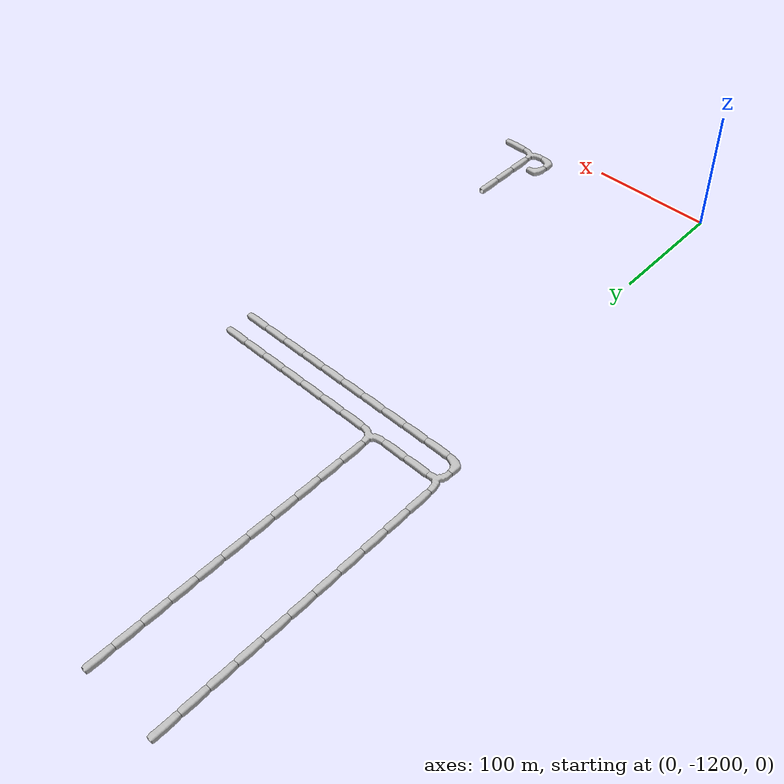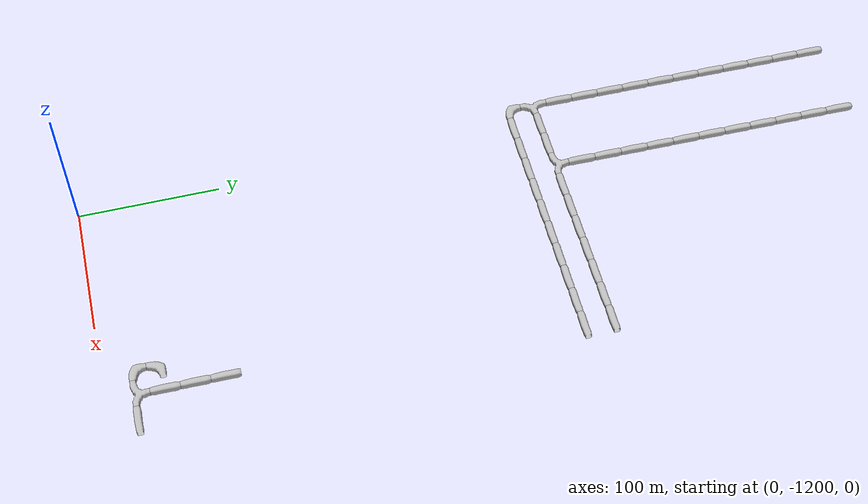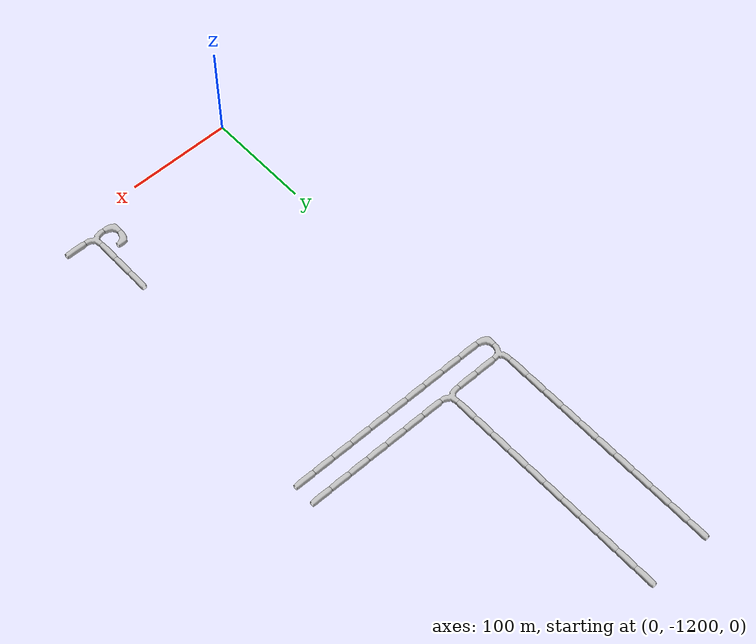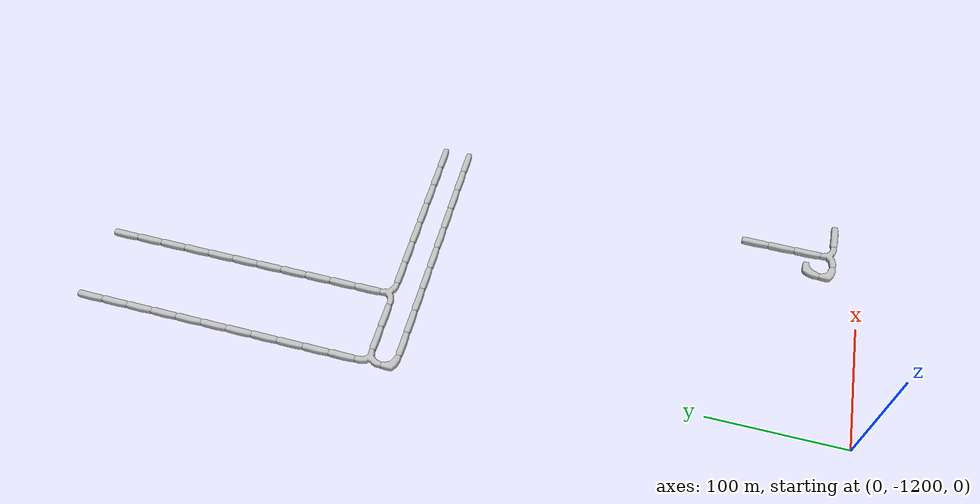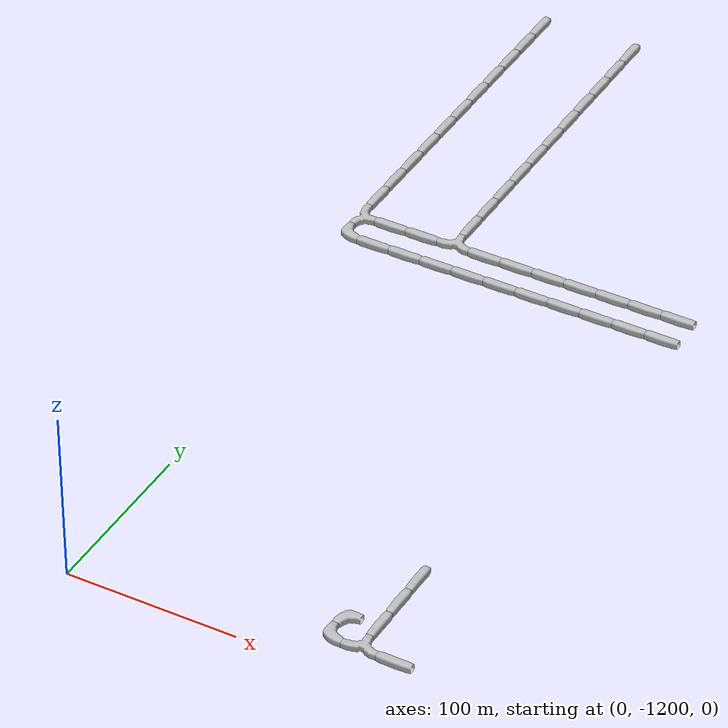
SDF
<sdf version="1.6">
 <world name="cave_8000_4">
  <include>
   <static>true</static>
   <name>cave_2_-32</name>
   <pose>40 -640 0 0 0 0.0</pose>
   <uri>model://cave_straight_20m</uri>
  </include>
  <include>
   <static>true</static>
   <name>cave_2_-33</name>
   <pose>40 -660 0 0 0 0.0</pose>
   <uri>model://cave_straight_20m</uri>
  </include>
  <include>
   <static>true</static>
   <name>cave_2_-34</name>
   <pose>40 -680 0 0 0 0.0</pose>
   <uri>model://cave_straight_20m</uri>
  </include>
  <include>
   <static>true</static>
   <name>cave_2_-35</name>
   <pose>40 -700 0 0 0 0.0</pose>
   <uri>model://cave_straight_20m</uri>
  </include>
  <include>
   <static>true</static>
   <name>cave_2_-36</name>
   <pose>40 -720 0 0 0 0.0</pose>
   <uri>model://cave_straight_20m</uri>
  </include>
  <include>
   <static>true</static>
   <name>cave_2_-37</name>
   <pose>40 -740 0 0 0 0.0</pose>
   <uri>model://cave_straight_20m</uri>
  </include>
  <include>
   <static>true</static>
   <name>cave_2_-38</name>
   <pose>40 -760 0 0 0 0.0</pose>
   <uri>model://cave_straight_20m</uri>
  </include>
  <include>
   <static>true</static>
   <name>cave_2_-39</name>
   <pose>40 -780 0 0 0 0.0</pose>
   <uri>model://cave_straight_20m</uri>
  </include>
  <include>
   <static>true</static>
   <name>cave_2_-40</name>
   <pose>40 -800 0 0 0 0.0</pose>
   <uri>model://cave_straight_20m</uri>
  </include>
  <include>
   <static>true</static>
   <name>cave_2_-41</name>
   <pose>40 -820 0 0 0 0.0</pose>
   <uri>model://cave_straight_20m</uri>
  </include>
  <include>
   <static>true</static>
   <name>cave_2_-42</name>
   <pose>40 -840 0 0 0 0.0</pose>
   <uri>model://cave_straight_20m</uri>
  </include>
  <include>
   <static>true</static>
   <name>cave_2_-43</name>
   <pose>40 -860 0 0 0 0.0</pose>
   <uri>model://cave_3way_20m</uri>
  </include>
  <include>
   <static>true</static>
   <name>cave_3_-43</name>
   <pose>60 -860 0 0 0 1.5707963267948966</pose>
   <uri>model://cave_straight_20m</uri>
  </include>
  <include>
   <static>true</static>
   <name>cave_4_-43</name>
   <pose>80 -860 0 0 0 1.5707963267948966</pose>
   <uri>model://cave_straight_20m</uri>
  </include>
  <include>
   <static>true</static>
   <name>cave_5_-43</name>
   <pose>100 -860 0 0 0 1.5707963267948966</pose>
   <uri>model://cave_straight_20m</uri>
  </include>
  <include>
   <static>true</static>
   <name>cave_6_-43</name>
   <pose>120 -860 0 0 0 1.5707963267948966</pose>
   <uri>model://cave_straight_20m</uri>
  </include>
  <include>
   <static>true</static>
   <name>cave_7_-43</name>
   <pose>140 -860 0 0 0 1.5707963267948966</pose>
   <uri>model://cave_straight_20m</uri>
  </include>
  <include>
   <static>true</static>
   <name>cave_8_-43</name>
   <pose>160 -860 0 0 0 1.5707963267948966</pose>
   <uri>model://cave_straight_20m</uri>
  </include>
  <include>
   <static>true</static>
   <name>cave_9_-43</name>
   <pose>180 -860 0 0 0 1.5707963267948966</pose>
   <uri>model://cave_straight_20m</uri>
  </include>
  <include>
   <static>true</static>
   <name>cave_9_-59</name>
   <pose>180 -1180 0 0 0 1.5707963267948966</pose>
   <uri>model://cave_straight_20m</uri>
  </include>
  <include>
   <static>true</static>
   <name>cave_8_-59</name>
   <pose>160 -1180 0 0 0 0.0</pose>
   <uri>model://cave_3way_20m</uri>
  </include>
  <include>
   <static>true</static>
   <name>cave_7_-59</name>
   <pose>140 -1180 0 0 0 0.0</pose>
   <uri>model://cave_L_20m</uri>
  </include>
  <include>
   <static>true</static>
   <name>cave_7_-58</name>
   <pose>140 -1160 0 0 0 -1.5707963267948966</pose>
   <uri>model://cave_L_20m</uri>
  </include>
  <include>
   <static>true</static>
   <name>cave_8_-58</name>
   <pose>160 -1160 0 0 0 0.0</pose>
   <uri>model://cave_straight_20m</uri>
  </include>
  <include>
   <static>true</static>
   <name>cave_8_-57</name>
   <pose>160 -1140 0 0 0 0.0</pose>
   <uri>model://cave_straight_20m</uri>
  </include>
  <include>
   <static>true</static>
   <name>cave_8_-56</name>
   <pose>160 -1120 0 0 0 0.0</pose>
   <uri>model://cave_straight_20m</uri>
  </include>
  <include>
   <static>true</static>
   <name>cave_1_-43</name>
   <pose>20 -860 0 0 0 1.5707963267948966</pose>
   <uri>model://cave_straight_20m</uri>
  </include>
  <include>
   <static>true</static>
   <name>cave_0_-43</name>
   <pose>0 -860 0 0 0 1.5707963267948966</pose>
   <uri>model://cave_straight_20m</uri>
  </include>
  <include>
   <static>true</static>
   <name>cave_-1_-43</name>
   <pose>-20 -860 0 0 0 -1.5707963267948966</pose>
   <uri>model://cave_3way_20m</uri>
  </include>
  <include>
   <static>true</static>
   <name>cave_-1_-44</name>
   <pose>-20 -880 0 0 0 0.0</pose>
   <uri>model://cave_L_20m</uri>
  </include>
  <include>
   <static>true</static>
   <name>cave_0_-44</name>
   <pose>0 -880 0 0 0 1.5707963267948966</pose>
   <uri>model://cave_straight_20m</uri>
  </include>
  <include>
   <static>true</static>
   <name>cave_1_-44</name>
   <pose>20 -880 0 0 0 1.5707963267948966</pose>
   <uri>model://cave_straight_20m</uri>
  </include>
  <include>
   <static>true</static>
   <name>cave_2_-44</name>
   <pose>40 -880 0 0 0 1.5707963267948966</pose>
   <uri>model://cave_straight_20m</uri>
  </include>
  <include>
   <static>true</static>
   <name>cave_3_-44</name>
   <pose>60 -880 0 0 0 1.5707963267948966</pose>
   <uri>model://cave_straight_20m</uri>
  </include>
  <include>
   <static>true</static>
   <name>cave_4_-44</name>
   <pose>80 -880 0 0 0 1.5707963267948966</pose>
   <uri>model://cave_straight_20m</uri>
  </include>
  <include>
   <static>true</static>
   <name>cave_5_-44</name>
   <pose>100 -880 0 0 0 1.5707963267948966</pose>
   <uri>model://cave_straight_20m</uri>
  </include>
  <include>
   <static>true</static>
   <name>cave_6_-44</name>
   <pose>120 -880 0 0 0 1.5707963267948966</pose>
   <uri>model://cave_straight_20m</uri>
  </include>
  <include>
   <static>true</static>
   <name>cave_7_-44</name>
   <pose>140 -880 0 0 0 1.5707963267948966</pose>
   <uri>model://cave_straight_20m</uri>
  </include>
  <include>
   <static>true</static>
   <name>cave_8_-44</name>
   <pose>160 -880 0 0 0 1.5707963267948966</pose>
   <uri>model://cave_straight_20m</uri>
  </include>
  <include>
   <static>true</static>
   <name>cave_9_-44</name>
   <pose>180 -880 0 0 0 1.5707963267948966</pose>
   <uri>model://cave_straight_20m</uri>
  </include>
  <include>
   <static>true</static>
   <name>cave_-1_-42</name>
   <pose>-20 -840 0 0 0 0.0</pose>
   <uri>model://cave_straight_20m</uri>
  </include>
  <include>
   <static>true</static>
   <name>cave_-1_-41</name>
   <pose>-20 -820 0 0 0 0.0</pose>
   <uri>model://cave_straight_20m</uri>
  </include>
  <include>
   <static>true</static>
   <name>cave_-1_-40</name>
   <pose>-20 -800 0 0 0 0.0</pose>
   <uri>model://cave_straight_20m</uri>
  </include>
  <include>
   <static>true</static>
   <name>cave_-1_-39</name>
   <pose>-20 -780 0 0 0 0.0</pose>
   <uri>model://cave_straight_20m</uri>
  </include>
  <include>
   <static>true</static>
   <name>cave_-1_-38</name>
   <pose>-20 -760 0 0 0 0.0</pose>
   <uri>model://cave_straight_20m</uri>
  </include>
  <include>
   <static>true</static>
   <name>cave_-1_-37</name>
   <pose>-20 -740 0 0 0 0.0</pose>
   <uri>model://cave_straight_20m</uri>
  </include>
  <include>
   <static>true</static>
   <name>cave_-1_-36</name>
   <pose>-20 -720 0 0 0 0.0</pose>
   <uri>model://cave_straight_20m</uri>
  </include>
  <include>
   <static>true</static>
   <name>cave_-1_-35</name>
   <pose>-20 -700 0 0 0 0.0</pose>
   <uri>model://cave_straight_20m</uri>
  </include>
  <include>
   <static>true</static>
   <name>cave_-1_-34</name>
   <pose>-20 -680 0 0 0 0.0</pose>
   <uri>model://cave_straight_20m</uri>
  </include>
  <include>
   <static>true</static>
   <name>cave_-1_-33</name>
   <pose>-20 -660 0 0 0 0.0</pose>
   <uri>model://cave_straight_20m</uri>
  </include>
  <include>
   <static>true</static>
   <name>cave_-1_-32</name>
   <pose>-20 -640 0 0 0 0.0</pose>
   <uri>model://cave_straight_20m</uri>
  </include>
 </world>
</sdf>
